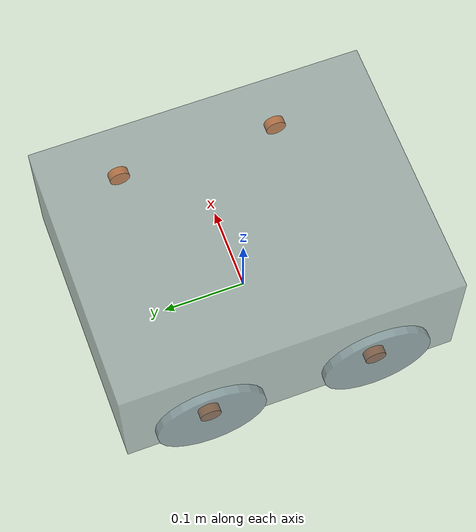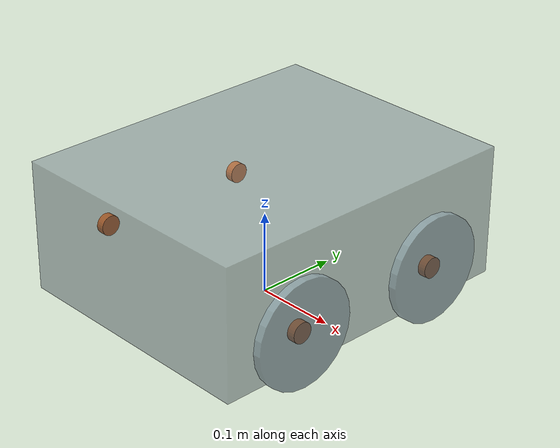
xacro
<?xml version="1.0" ?>

<robot name="test" xmlns:xacro="http://www.ros.org/wiki/xacro">

    <material name="black">

        <color rgba="0.0 0.0 0.0 1.0"/>

    </material>

    <material name="orange">
        <color rgba="1.0 0.423529411765 0.0392156862745 1.0"/>
    </material>

    <material name="TEST_COL">
        <color rgba="0.4196078431372549 0.48627450980392156 0.5215686274509804 0.5" />
    </material>

    <material name="TEST_COL_1">
        <color rgba="0.4549019607843137 0.5450980392156862 0.592156862745098 0.7" />
    </material>

    <xacro:include filename="$(find urdf_ex)/urdf/inertia_macro.urdf.xacro"/>

    <link name="base_footprint"/>

    <joint name="base_joint" type="fixed">

        <parent link="base_footprint"/>
        <origin rpy="0 0 0" xyz="0 0 0.075"/>
        <child link="base_link"/>

    </joint>

    <link name="base_link">

        <collision>

            <origin rpy="0 0 0" xyz="0 0 0.02"/>

            <geometry>

                <box size="0.32 0.40 0.16"/>

            </geometry>

        </collision>

        <visual>

            <origin rpy="0 0 0" xyz="0 0 0.02"/>
            <!-- 가로 32, 세로 40, 높이 16cm , 박스 생성 기준이 사각형의 정가운데임 따라서 8cm 위로 올리고 바퀴가 지면에 닿는 높이를 계산하면 12.5cm 정도 올려야함-->
            <geometry>

                <box size="0.32 0.40 0.16"/>

            </geometry>

            <material name="TEST_COL"/>

        </visual>

        <inertial>

            <origin rpy="0 0 0" xyz="0 0 0.02"/>

            <mass value="30"/>

            <xacro:box_inertia m="30.0" x="0.32" y="0.40" z="0.16"/>

        </inertial>

    </link>

    <joint name="bearing_join_R" type="continuous">

        <parent link="base_link"/>
        <origin rpy="0 0 0" xyz="0.16 0.1 -0.015"/>
        <child link="bearing_link_R"/>

    </joint>

 <link name="bearing_link_R">

    <collision>

        <origin rpy="0 1.57 0" xyz="0 0 0"/>

        <geometry>

            <cylinder length="0.01" radius="0.0125"/>

        </geometry>

    </collision>

    <visual>

        <origin rpy="0 1.57 0" xyz="0 0 0"/>
        <geometry>

        <cylinder length="0.01" radius="0.0125"/>

        </geometry>

        <material name="orange"/>

    </visual>

    <inertial>

        <origin rpy="0 1.57 0" xyz="0 0 0"/>

        <mass value="0.3"/>

       <xacro:cylinder_inertia m="0.3" r="0.0125" h="0.025"/>

    </inertial>

</link>

<joint name="bearing_join_L" type="continuous">

    <parent link="base_link"/>
    <origin rpy="0 0 0" xyz="-0.16 0.1 -0.015"/>
    <child link="bearing_link_L"/>
</joint>

 <link name="bearing_link_L">

        <collision>

        <origin rpy="0 1.57 0" xyz="0 0 0"/>

            <geometry>

            <cylinder length="0.01" radius="0.0125"/>

            </geometry>

        </collision>

        <visual>

        <origin rpy="0 1.57 0" xyz="0 0 0"/>

            <geometry>

            <cylinder length="0.01" radius="0.0125"/>

            </geometry>

            <material name="orange"/>

        </visual>

        <inertial>

        <origin rpy="0 1.57 0" xyz="0 0 0"/>

            <mass value="0.3"/>

            <xacro:cylinder_inertia m="0.3" r="0.0125" h="0.025"/>

        </inertial>

    </link>

<joint name="bearing_join_U" type="continuous">

    <parent link="base_link"/>
    <origin rpy="0 0 0" xyz="0.16 -0.1 -0.015"/>
    <child link="bearing_link_U"/>
</joint>

 <link name="bearing_link_U">

    <collision>

        <origin rpy="0 1.57 0" xyz="0 0 0.0"/>

        <geometry>

            <cylinder length="0.01" radius="0.0125"/>

        </geometry>

    </collision>

    <visual>

        <origin rpy="0 1.57 0" xyz="0 0 0.0"/>
        <geometry>

        <cylinder length="0.01" radius="0.0125"/>

        </geometry>

        <material name="orange"/>

    </visual>

    <inertial>

        <origin rpy="0 1.57 0" xyz="0 0 0.0"/>

        <mass value="0.3"/>

       <xacro:cylinder_inertia m="0.3" r="0.0125" h="0.025"/>

    </inertial>

</link>

<joint name="bearing_join_B" type="continuous">

        <parent link="base_link"/>
        <origin rpy="0 0 0" xyz="-0.16 -0.1 -0.015"/>
        <child link="bearing_link_B"/>
</joint>

 <link name="bearing_link_B">

    <collision>

        <origin rpy="0 1.57 0" xyz="0 0 0.0"/>

        <geometry>

            <cylinder length="0.01" radius="0.0125"/>

        </geometry>

    </collision>

    <visual>

        <origin rpy="0 1.57 0" xyz="0 0 0.0"/>
        <geometry>

        <cylinder length="0.01" radius="0.0125"/>

        </geometry>

        <material name="orange"/>

    </visual>

    <inertial>

        <origin rpy="0 1.57 0" xyz="0 0 0.0"/>

        <mass value="0.3"/>

       <xacro:cylinder_inertia m="0.3" r="0.0125" h="0.025"/>

    </inertial>

</link>

<joint name="Wheel_joint_R" type="continuous">

    <parent link="bearing_link_R"/>
    <origin rpy="0 0 0" xyz="0.0 0.0 0.0"/>
    <child link="Wheel_R"/>
</joint>

<link name="Wheel_R">

    <collision>

        <origin rpy="0 1.57 0" xyz="0 0 0.0"/>

        <geometry>

        <cylinder length="0.02" radius="0.13"/>

        </geometry>

    </collision>

    <visual>

        <origin rpy="0 1.57 0" xyz="0 0 0.0"/>

        <geometry>

        <cylinder length="0.02" radius="0.065"/>

        </geometry>

        <material name="TEST_COL_1"/>

    </visual>

    <inertial>

        <origin rpy="0 1.57 0" xyz="0 0 0.0"/>

        <mass value="1"/>

        <xacro:cylinder_inertia m="1.0" r="0.013" h="0.02"/>

    </inertial>

</link>

<joint name="Wheel_joint_L" type="continuous">

    <parent link="bearing_link_L"/>
    <origin rpy="0 0 0" xyz="0.0 0.0 0.0"/>
    <child link="Wheel_L"/>
</joint>

<link name="Wheel_L">

    <collision>

        <origin rpy="0 1.57 0" xyz="0 0 0.0"/>

        <geometry>

        <cylinder length="0.02" radius="0.13"/>

        </geometry>

    </collision>

    <visual>

        <origin rpy="0 1.57 0" xyz="0 0 0.0"/>

        <geometry>

        <cylinder length="0.02" radius="0.065"/>

        </geometry>

        <material name="TEST_COL_1"/>

    </visual>

    <inertial>

        <origin rpy="0 1.57 0" xyz="0 0 0.0"/>

        <mass value="1"/>

        <xacro:cylinder_inertia m="1.0" r="0.013" h="0.02"/>

    </inertial>

</link>

<joint name="Wheel_joint_U" type="continuous">

    <parent link="bearing_link_U"/>
    <origin rpy="0 0 0" xyz="0.0 0.0 0.0"/>
    <child link="Wheel_U"/>

</joint>

<link name="Wheel_U">

    <collision>

        <origin rpy="0 1.57 0" xyz="0 0 0.0"/>

        <geometry>

        <cylinder length="0.02" radius="0.13"/>

        </geometry>

    </collision>

    <visual>

        <origin rpy="0 1.57 0" xyz="0 0 0.0"/>

        <geometry>

        <cylinder length="0.02" radius="0.065"/>

        </geometry>

        <material name="TEST_COL_1"/>

    </visual>

    <inertial>

        <origin rpy="0 1.57 0" xyz="0 0 0.0"/>

        <mass value="1"/>

        <xacro:cylinder_inertia m="1.0" r="0.013" h="0.02"/>

    </inertial>

</link>

<joint name="Wheel_joint_B" type="continuous">

    <parent link="bearing_link_B"/>
    <origin rpy="0 0 0" xyz="0.0 0.0 0.0"/>
    <child link="Wheel_B"/>
</joint>

<link name="Wheel_B">

    <collision>

        <origin rpy="0 1.57 0" xyz="0 0 0.0"/>

        <geometry>

        <cylinder length="0.02" radius="0.13"/>

        </geometry>

    </collision>

    <visual>

        <origin rpy="0 1.57 0" xyz="0 0 0.0"/>

        <geometry>

        <cylinder length="0.02" radius="0.065"/>

        </geometry>

        <material name="TEST_COL_1"/>

    </visual>

    <inertial>

        <origin rpy="0 1.57 0" xyz="0 0 0.0"/>

        <mass value="1"/>

        <xacro:cylinder_inertia m="1.0" r="0.013" h="0.02"/>
    </inertial>

</link>

</robot>
